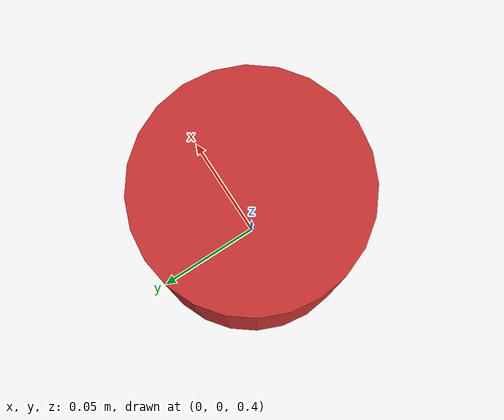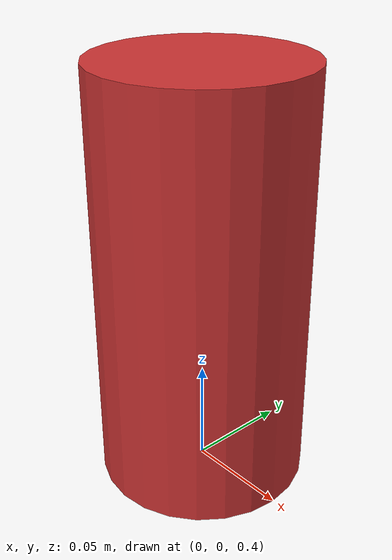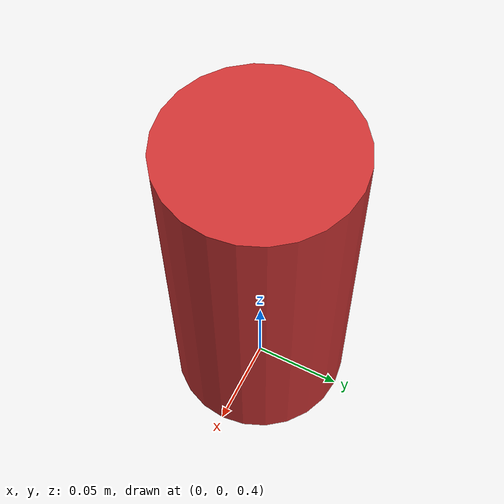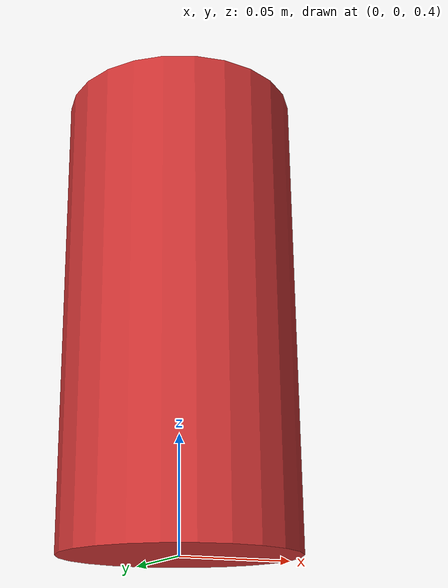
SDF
<?xml version="1.0" ?>
<sdf version="1.6">
  <model name="cylinder">
    <pose>0 0 0.5 0 0 0</pose>
    <link name="link">
      <visual name="visual">
        <geometry>
          <cylinder>
            <radius>0.05</radius>
            <length>0.2</length>
          </cylinder>
        </geometry>
        <material>
          <ambient>0.8 0.2 0.2 1</ambient>
          <diffuse>0.8 0.2 0.2 1</diffuse>
        </material>
      </visual>
      <collision name="collision">
        <geometry>
          <cylinder>
            <radius>0.05</radius>
            <length>0.2</length>
          </cylinder>
        </geometry>
      </collision>
      <inertial>
        <mass>1.0</mass>
        <inertia>
          <ixx>0.001</ixx>
          <iyy>0.001</iyy>
          <izz>0.001</izz>
        </inertia>
      </inertial>
    </link>
    <static>true</static>
  </model>
</sdf>
